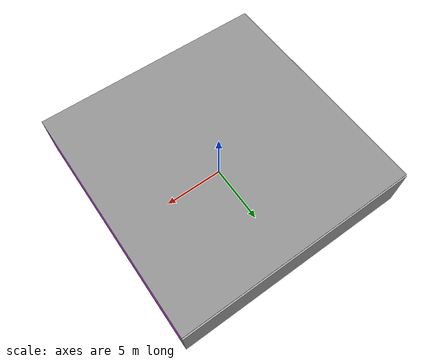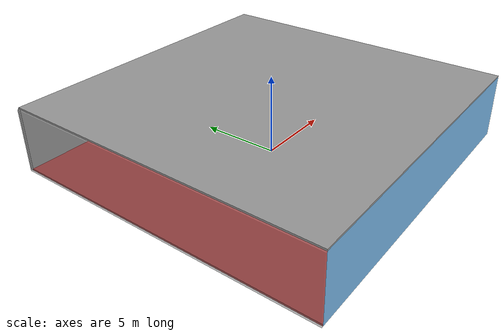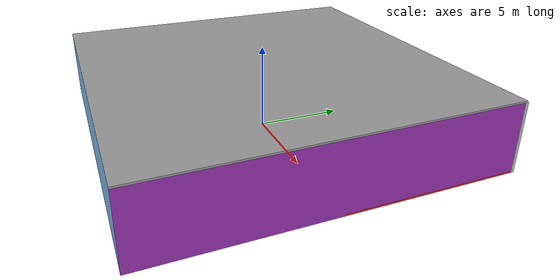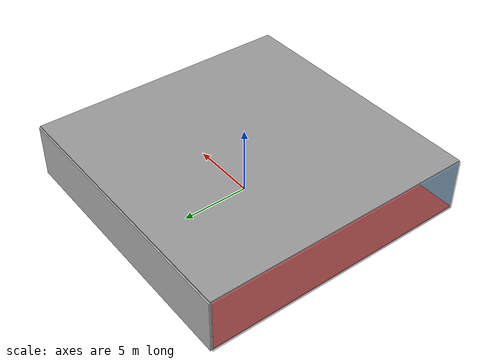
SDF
<sdf version="1.4">
 <world name="default">
  <physics type="ode">
   <max_step_size>0.001</max_step_size>
   <real_time_factor>1</real_time_factor>
   <real_time_update_rate>1000</real_time_update_rate>
   <gravity>0 0 -9.8</gravity>
  </physics>
  <scene><ambient>0.4 0.4 0.4 1</ambient><background>0.7 0.7 0.7 1</background><shadows>1</shadows></scene>
  <model name="Surrounding">
   <static>1</static>
   <link name="Ceiling">
    <collision name="Ceiling_Collision"><geometry><box><size>20 20 0.1</size></box></geometry></collision>
    <visual name="Ceiling_Visual">
     <geometry><box><size>20 20 0.1</size></box></geometry>
     <material>
      <script><uri>file://media/materials/scripts/gazebo.material</uri><name>Gazebo/GreyGradientSky</name></script>
     </material>
    </visual>
    <pose>0 0 4.05 0 0 0</pose>
   </link>
   <link name="Wall_South">
    <collision name="Wall_South_Collision">
     <geometry><box><size>20 0 4</size></box></geometry>
     <pose>0 0 2 0 -0 0</pose>
    </collision>
    <visual name="Wall_South_Visual">
     <pose>0 0 2 0 -0 0</pose>
     <geometry><box><size>20 0 4</size></box></geometry>
     <material>
      <script><uri>file://media/materials/scripts/gazebo.material</uri><name>Gazebo/SkyBlue</name></script>
     </material>
    </visual>
    <velocity_decay><linear>0</linear><angular>0</angular></velocity_decay>
    <pose>0 -10 0 0 -0 0</pose>
   </link>
   <link name="Wall_East">
    <collision name="Wall_21_Collision">
     <geometry><box><size>20 0 4</size></box></geometry>
     <pose>0 0 2 0 -0 0</pose>
    </collision>
    <visual name="Wall_21_Visual">
     <pose>0 0 2 0 -0 0</pose>
     <geometry><box><size>20 0 4</size></box></geometry>
     <material>
      <script><uri>file://media/materials/scripts/gazebo.material</uri><name>Gazebo/PurpleGlow</name></script>
     </material>
    </visual>
    <velocity_decay><linear>0</linear><angular>0</angular></velocity_decay>
    <pose>10 0 0 0 -0 1.5708</pose>
   </link>
   <link name="Wall_North">
    <collision name="Wall_22_Collision">
     <geometry><box><size>20 0.2 4</size></box></geometry>
     <pose>0 0 2 0 -0 0</pose>
    </collision>
    <visual name="Wall_22_Visual">
     <pose>0 0 2 0 -0 0</pose>
     <geometry><box><size>20 0.2 4</size></box></geometry>
     <material>
      <script><uri>file://media/materials/scripts/gazebo.material</uri><name>Gazebo/LightOn</name></script>
     </material>
    </visual>
    <velocity_decay><linear>0</linear><angular>0</angular></velocity_decay>
    <pose>0 10 0 0 -0 0</pose>
   </link>
   <link name="Wall_West">
    <collision name="Wall_23_Collision">
     <geometry><box><size>20 0.2 4</size></box></geometry>
     <pose>0 0 2 0 -0 0</pose>
    </collision>
    <visual name="Wall_23_Visual">
     <pose>0 0 2 0 -0 0</pose>
     <geometry><box><size>20 0.2 4</size></box></geometry>
     <material>
      <script><uri>file://media/materials/scripts/gazebo.material</uri><name>Gazebo/GreyTransparent</name></script>
     </material>
    </visual>
    <velocity_decay><linear>0</linear><angular>0</angular></velocity_decay>
    <pose>-10 0 0 0 0 -1.5708</pose>
   </link>
   <link name="Ground_link">
    <collision name="collision">
     <pose>0 0 .05 0 -0 0</pose>
     <geometry><box><size>20 20 0.1</size></box></geometry>
    </collision>
    <visual name="visual">
     <pose>0 0 .05 0 -0 0</pose>
     <geometry><box><size>20 20 0.1</size></box></geometry>
     <material>
      <script><uri>file://media/materials/scripts/gazebo.material</uri><name>Gazebo/Red</name></script>
     </material>
    </visual>
   </link>
   <static>1</static>
  </model>
  <spherical_coordinates>
   <surface_model>EARTH_WGS84</surface_model>
   <latitude_deg>0</latitude_deg>
   <longitude_deg>0</longitude_deg>
   <elevation>0</elevation>
   <heading_deg>0</heading_deg>
  </spherical_coordinates>
  <light name="lightball_0" type="diffuse">
   <diffuse>0.8 0.8 0.8 1</diffuse>
   <specular>0.2 0.2 0.2 1</specular>
   <attenuation>
    <range>100</range>
    <constant>0.7</constant>
    <linear>0.01</linear>
    <quadratic>0.001</quadratic>
   </attenuation>
   <direction>-0.5 0.1 -0.9</direction>
   <pose>-6.99836497977 9.96124620041 1.5210135259 0 0 0</pose>
  </light>
  <light name="lightball_1" type="diffuse">
   <diffuse>0.8 0.8 0.8 1</diffuse>
   <specular>0.2 0.2 0.2 1</specular>
   <attenuation>
    <range>100</range>
    <constant>0.7</constant>
    <linear>0.01</linear>
    <quadratic>0.001</quadratic>
   </attenuation>
   <direction>-0.5 0.1 -0.9</direction>
   <pose>6.08618954683 -1.88249552502 3.8780234082 0 0 0</pose>
  </light>
  <light name="lightball_2" type="diffuse">
   <diffuse>0.8 0.8 0.8 1</diffuse>
   <specular>0.2 0.2 0.2 1</specular>
   <attenuation>
    <range>100</range>
    <constant>0.7</constant>
    <linear>0.01</linear>
    <quadratic>0.001</quadratic>
   </attenuation>
   <direction>-0.5 0.1 -0.9</direction>
   <pose>7.84432018993 -3.44427537781 2.14902333426 0 0 0</pose>
  </light>
  <include><uri>model://table</uri><pose>-4.22185032896 4.85951302592 0 0 0 1.28079953047</pose></include>
  <include><uri>model://table</uri><pose>3.87041335069 -4.88693324244 0 0 0 2.69996383494</pose></include>
  <include>
   <uri>model://construction_cone</uri>
   <pose>7.88904955364 -0.759072164651 0 0 0 1.87476039685</pose>
  </include>
 </world>
</sdf>

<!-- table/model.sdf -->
<sdf version="1.5">
  <model name="table">
    <static>true</static>
    <link name="link">
      <collision name="surface">
        <pose>0 0 1.0 0 0 0</pose>
        <geometry>
          <box>
            <size>1.5 0.8 0.03</size>
          </box>
        </geometry>
        <surface>
          <friction>
            <ode>
              <mu>0.6</mu>
              <mu2>0.6</mu2>
            </ode>
          </friction>
        </surface>
      </collision>
      <visual name="visual1">
        <pose>0 0 1.0 0 0 0</pose>
        <geometry>
          <box>
            <size>1.5 0.8 0.03</size>
          </box>
        </geometry>
        <material>
          <script>
            <uri>model://media/materials/scripts/gazebo.material</uri>
            <name>Gazebo/Wood</name>
          </script>
        </material>
      </visual>
      <collision name="front_left_leg">
        <pose>0.68 0.38 0.5 0 0 0</pose>
        <geometry>
          <cylinder>
            <radius>0.02</radius>
            <length>1.0</length>
          </cylinder>
        </geometry>
      </collision>
      <visual name="front_left_leg">
        <pose>0.68 0.38 0.5 0 0 0</pose>
        <geometry>
          <cylinder>
            <radius>0.02</radius>
            <length>1.0</length>
          </cylinder>
        </geometry>
        <material>
          <script>
            <uri>model://media/materials/scripts/gazebo.material</uri>
            <name>Gazebo/Grey</name>
          </script>
        </material>
      </visual>
      <collision name="front_right_leg">
        <pose>0.68 -0.38 0.5 0 0 0</pose>
        <geometry>
          <cylinder>
            <radius>0.02</radius>
            <length>1.0</length>
          </cylinder>
        </geometry>
      </collision>
      <visual name="front_right_leg">
        <pose>0.68 -0.38 0.5 0 0 0</pose>
        <geometry>
          <cylinder>
            <radius>0.02</radius>
            <length>1.0</length>
          </cylinder>
        </geometry>
        <material>
          <script>
            <uri>model://media/materials/scripts/gazebo.material</uri>
            <name>Gazebo/Grey</name>
          </script>
        </material>
      </visual>
      <collision name="back_right_leg">
        <pose>-0.68 -0.38 0.5 0 0 0</pose>
        <geometry>
          <cylinder>
            <radius>0.02</radius>
            <length>1.0</length>
          </cylinder>
        </geometry>
      </collision>
      <visual name="back_right_leg">
        <pose>-0.68 -0.38 0.5 0 0 0</pose>
        <geometry>
          <cylinder>
            <radius>0.02</radius>
            <length>1.0</length>
          </cylinder>
        </geometry>
        <material>
          <script>
            <uri>model://media/materials/scripts/gazebo.material</uri>
            <name>Gazebo/Grey</name>
          </script>
        </material>
      </visual>
      <collision name="back_left_leg">
        <pose>-0.68 0.38 0.5 0 0 0</pose>
        <geometry>
          <cylinder>
            <radius>0.02</radius>
            <length>1.0</length>
          </cylinder>
        </geometry>
      </collision>
      <visual name="back_left_leg">
        <pose>-0.68 0.38 0.5 0 0 0</pose>
        <geometry>
          <cylinder>
            <radius>0.02</radius>
            <length>1.0</length>
          </cylinder>
        </geometry>
        <material>
          <script>
            <uri>model://media/materials/scripts/gazebo.material</uri>
            <name>Gazebo/Grey</name>
          </script>
        </material>
      </visual>
    </link>
  </model>
</sdf>

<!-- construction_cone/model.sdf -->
<sdf version="1.5">
  <model name="Construction Cone">
    <link name="link">
      <collision name="collision">
        <geometry>
          <mesh>
            <scale>10 10 10</scale>
            <uri>file://isr-testbed/construction_cone/meshes/construction_cone.dae</uri>
          </mesh>
        </geometry>
      </collision>
      <visual name="visual">
        <geometry>
          <mesh>
            <scale>10 10 10</scale>
            <uri>file://isr-testbed/construction_cone/meshes/construction_cone.dae</uri>
          </mesh>
        </geometry>
      </visual>
    </link>
  </model>
</sdf>
